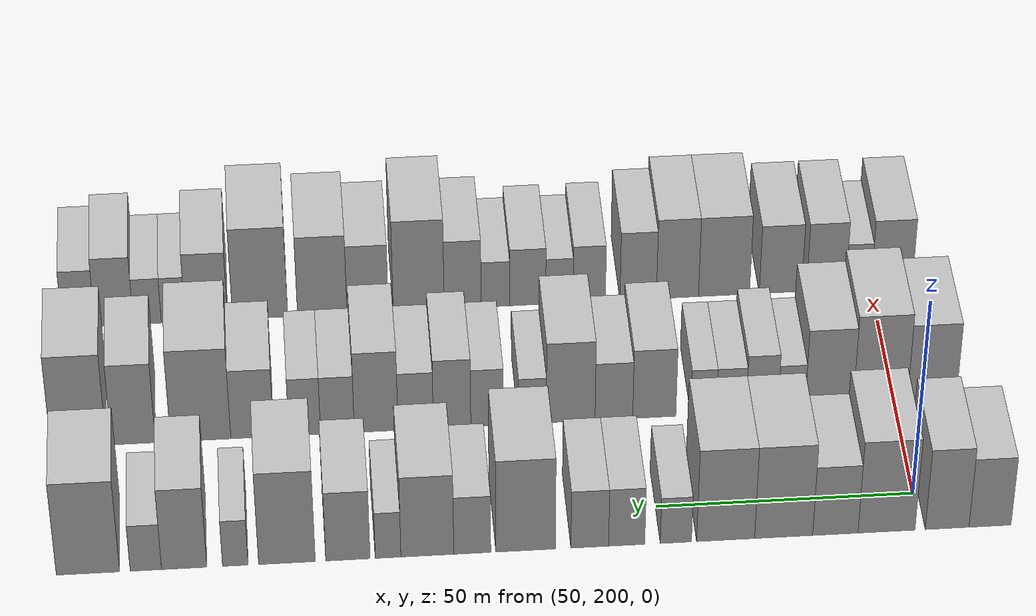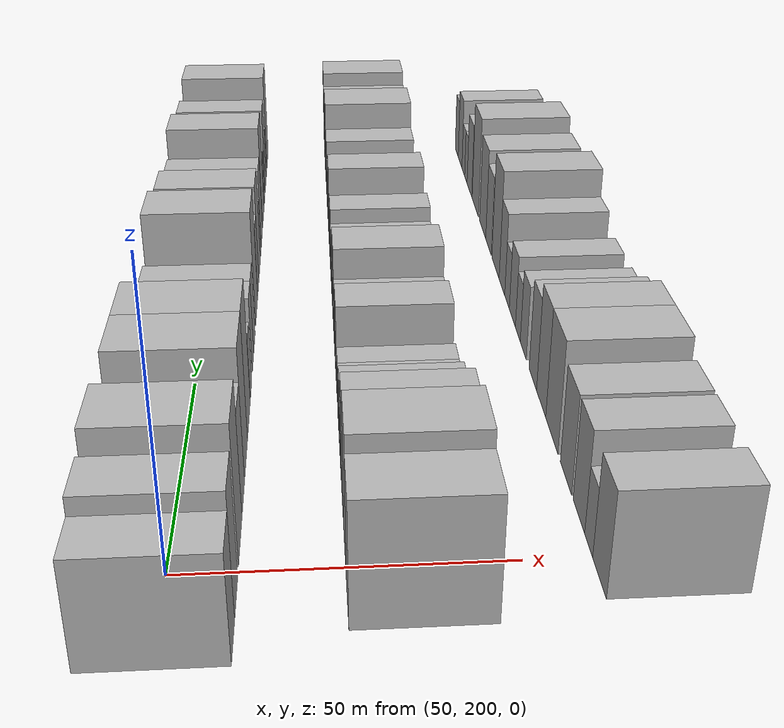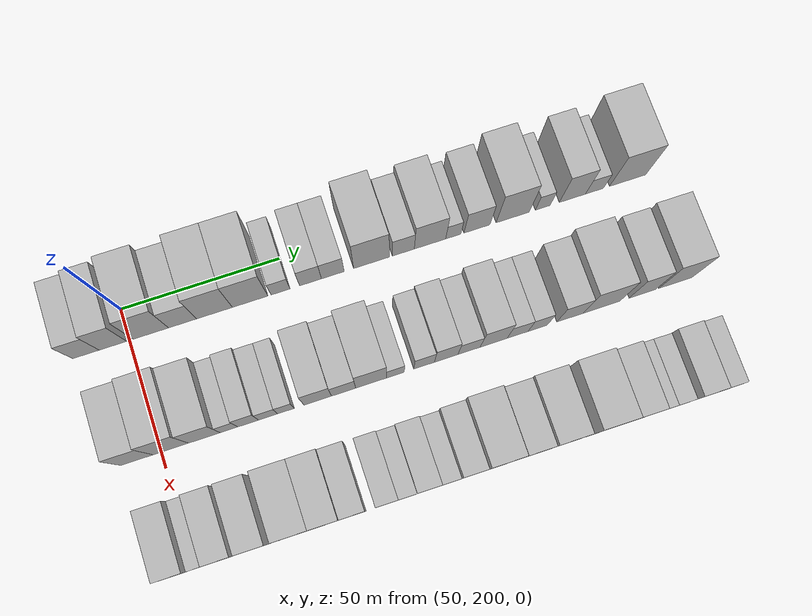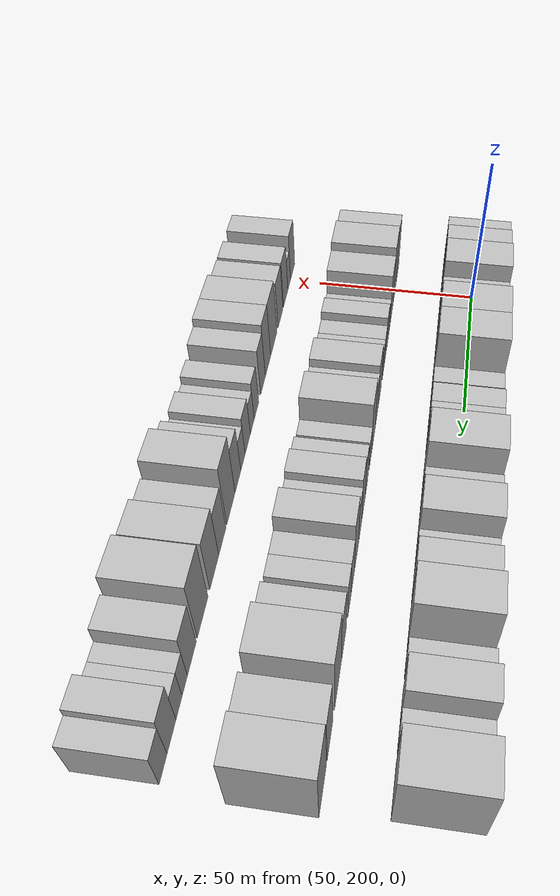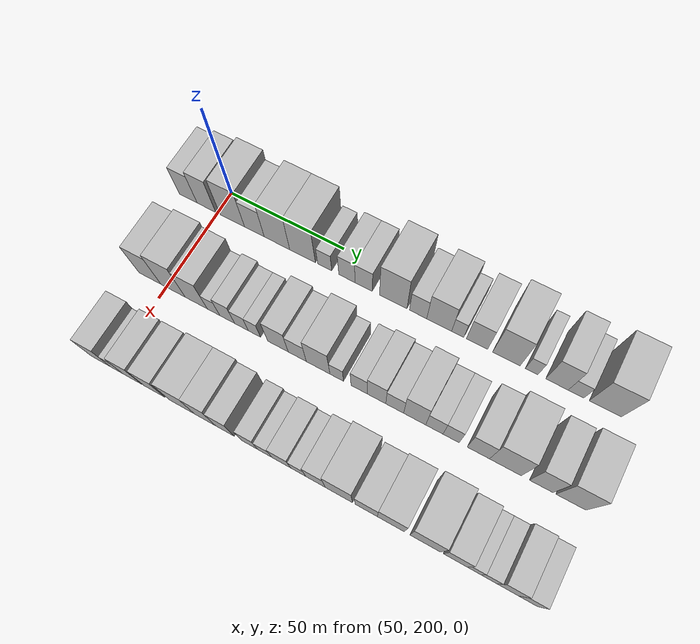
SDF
<sdf version="1.6">
 <world name="default">
  <model name="building_63">
   <static>1</static>
   <pose>50.0000 186.5423 0 0.000000 0.000000 0.000000</pose>
   <link name="link">
    <pose>0 0 9.00 0 0 0</pose>
    <collision name="collision"><geometry><box><size>20.0000 8.1435 18.0000</size></box></geometry></collision>
    <visual name="visual">
     <cast_shadows>0</cast_shadows>
     <geometry><box><size>20.0000 8.1435 18.0000</size></box></geometry>
     <material>
      <script>
       <uri>model://HANNAS_wall/materials/scripts</uri>
       <uri>model://HANNAS_wall/materials/textures</uri>
       <name>vrc/HANNAS_wall</name>
      </script>
     </material>
    </visual>
   </link>
  </model>
  <model name="building_64">
   <static>1</static>
   <pose>50.0000 194.8537 0 0.000000 0.000000 0.000000</pose>
   <link name="link">
    <pose>0 0 10.50 0 0 0</pose>
    <collision name="collision"><geometry><box><size>20.0000 8.4793 21.0000</size></box></geometry></collision>
    <visual name="visual">
     <cast_shadows>0</cast_shadows>
     <geometry><box><size>20.0000 8.4793 21.0000</size></box></geometry>
     <material>
      <script>
       <uri>model://HANNAS_wall/materials/scripts</uri>
       <uri>model://HANNAS_wall/materials/textures</uri>
       <name>vrc/HANNAS_wall</name>
      </script>
     </material>
    </visual>
   </link>
  </model>
  <model name="building_65">
   <static>1</static>
   <pose>50.0000 206.6092 0 0.000000 0.000000 0.000000</pose>
   <link name="link">
    <pose>0 0 12.00 0 0 0</pose>
    <collision name="collision"><geometry><box><size>20.0000 11.0317 24.0000</size></box></geometry></collision>
    <visual name="visual">
     <cast_shadows>0</cast_shadows>
     <geometry><box><size>20.0000 11.0317 24.0000</size></box></geometry>
     <material>
      <script>
       <uri>model://HANNAS_wall/materials/scripts</uri>
       <uri>model://HANNAS_wall/materials/textures</uri>
       <name>vrc/HANNAS_wall</name>
      </script>
     </material>
    </visual>
   </link>
  </model>
  <model name="building_66">
   <static>1</static>
   <pose>50.0000 216.4985 0 0.000000 0.000000 0.000000</pose>
   <link name="link">
    <pose>0 0 9.00 0 0 0</pose>
    <collision name="collision"><geometry><box><size>20.0000 8.7469 18.0000</size></box></geometry></collision>
    <visual name="visual">
     <cast_shadows>0</cast_shadows>
     <geometry><box><size>20.0000 8.7469 18.0000</size></box></geometry>
     <material>
      <script>
       <uri>model://HANNAS_wall/materials/scripts</uri>
       <uri>model://HANNAS_wall/materials/textures</uri>
       <name>vrc/HANNAS_wall</name>
      </script>
     </material>
    </visual>
   </link>
  </model>
  <model name="building_67">
   <static>1</static>
   <pose>50.0000 226.4782 0 0.000000 0.000000 0.000000</pose>
   <link name="link">
    <pose>0 0 12.00 0 0 0</pose>
    <collision name="collision"><geometry><box><size>20.0000 11.2125 24.0000</size></box></geometry></collision>
    <visual name="visual">
     <cast_shadows>0</cast_shadows>
     <geometry><box><size>20.0000 11.2125 24.0000</size></box></geometry>
     <material>
      <script>
       <uri>model://HANNAS_wall/materials/scripts</uri>
       <uri>model://HANNAS_wall/materials/textures</uri>
       <name>vrc/HANNAS_wall</name>
      </script>
     </material>
    </visual>
   </link>
  </model>
  <model name="building_68">
   <static>1</static>
   <pose>50.0000 237.6742 0 0.000000 0.000000 0.000000</pose>
   <link name="link">
    <pose>0 0 12.00 0 0 0</pose>
    <collision name="collision"><geometry><box><size>20.0000 11.1796 24.0000</size></box></geometry></collision>
    <visual name="visual">
     <cast_shadows>0</cast_shadows>
     <geometry><box><size>20.0000 11.1796 24.0000</size></box></geometry>
     <material>
      <script>
       <uri>model://HANNAS_wall/materials/scripts</uri>
       <uri>model://HANNAS_wall/materials/textures</uri>
       <name>vrc/HANNAS_wall</name>
      </script>
     </material>
    </visual>
   </link>
  </model>
  <model name="building_69">
   <static>1</static>
   <pose>50.0000 247.2629 0 0.000000 0.000000 0.000000</pose>
   <link name="link">
    <pose>0 0 6.00 0 0 0</pose>
    <collision name="collision"><geometry><box><size>20.0000 5.9978 12.0000</size></box></geometry></collision>
    <visual name="visual">
     <cast_shadows>0</cast_shadows>
     <geometry><box><size>20.0000 5.9978 12.0000</size></box></geometry>
     <material>
      <script>
       <uri>model://HANNAS_wall/materials/scripts</uri>
       <uri>model://HANNAS_wall/materials/textures</uri>
       <name>vrc/HANNAS_wall</name>
      </script>
     </material>
    </visual>
   </link>
  </model>
  <model name="building_70">
   <static>1</static>
   <pose>50.0000 256.7285 0 0.000000 0.000000 0.000000</pose>
   <link name="link">
    <pose>0 0 7.50 0 0 0</pose>
    <collision name="collision"><geometry><box><size>20.0000 6.9334 15.0000</size></box></geometry></collision>
    <visual name="visual">
     <cast_shadows>0</cast_shadows>
     <geometry><box><size>20.0000 6.9334 15.0000</size></box></geometry>
     <material>
      <script>
       <uri>model://HANNAS_wall/materials/scripts</uri>
       <uri>model://HANNAS_wall/materials/textures</uri>
       <name>vrc/HANNAS_wall</name>
      </script>
     </material>
    </visual>
   </link>
  </model>
  <model name="building_71">
   <static>1</static>
   <pose>50.0000 263.8117 0 0.000000 0.000000 0.000000</pose>
   <link name="link">
    <pose>0 0 7.50 0 0 0</pose>
    <collision name="collision"><geometry><box><size>20.0000 7.2331 15.0000</size></box></geometry></collision>
    <visual name="visual">
     <cast_shadows>0</cast_shadows>
     <geometry><box><size>20.0000 7.2331 15.0000</size></box></geometry>
     <material>
      <script>
       <uri>model://HANNAS_wall/materials/scripts</uri>
       <uri>model://HANNAS_wall/materials/textures</uri>
       <name>vrc/HANNAS_wall</name>
      </script>
     </material>
    </visual>
   </link>
  </model>
  <model name="building_72">
   <static>1</static>
   <pose>50.0000 276.1215 0 0.000000 0.000000 0.000000</pose>
   <link name="link">
    <pose>0 0 12.00 0 0 0</pose>
    <collision name="collision"><geometry><box><size>20.0000 11.3864 24.0000</size></box></geometry></collision>
    <visual name="visual">
     <cast_shadows>0</cast_shadows>
     <geometry><box><size>20.0000 11.3864 24.0000</size></box></geometry>
     <material>
      <script>
       <uri>model://HANNAS_wall/materials/scripts</uri>
       <uri>model://HANNAS_wall/materials/textures</uri>
       <name>vrc/HANNAS_wall</name>
      </script>
     </material>
    </visual>
   </link>
  </model>
  <model name="building_73">
   <static>1</static>
   <pose>50.0000 286.3479 0 0.000000 0.000000 0.000000</pose>
   <link name="link">
    <pose>0 0 7.50 0 0 0</pose>
    <collision name="collision"><geometry><box><size>20.0000 7.0665 15.0000</size></box></geometry></collision>
    <visual name="visual">
     <cast_shadows>0</cast_shadows>
     <geometry><box><size>20.0000 7.0665 15.0000</size></box></geometry>
     <material>
      <script>
       <uri>model://HANNAS_wall/materials/scripts</uri>
       <uri>model://HANNAS_wall/materials/textures</uri>
       <name>vrc/HANNAS_wall</name>
      </script>
     </material>
    </visual>
   </link>
  </model>
  <model name="building_74">
   <static>1</static>
   <pose>50.0000 294.9351 0 0.000000 0.000000 0.000000</pose>
   <link name="link">
    <pose>0 0 10.50 0 0 0</pose>
    <collision name="collision"><geometry><box><size>20.0000 10.1079 21.0000</size></box></geometry></collision>
    <visual name="visual">
     <cast_shadows>0</cast_shadows>
     <geometry><box><size>20.0000 10.1079 21.0000</size></box></geometry>
     <material>
      <script>
       <uri>model://HANNAS_wall/materials/scripts</uri>
       <uri>model://HANNAS_wall/materials/textures</uri>
       <name>vrc/HANNAS_wall</name>
      </script>
     </material>
    </visual>
   </link>
  </model>
  <model name="building_75">
   <static>1</static>
   <pose>50.0000 302.4384 0 0.000000 0.000000 0.000000</pose>
   <link name="link">
    <pose>0 0 6.00 0 0 0</pose>
    <collision name="collision"><geometry><box><size>20.0000 4.8986 12.0000</size></box></geometry></collision>
    <visual name="visual">
     <cast_shadows>0</cast_shadows>
     <geometry><box><size>20.0000 4.8986 12.0000</size></box></geometry>
     <material>
      <script>
       <uri>model://HANNAS_wall/materials/scripts</uri>
       <uri>model://HANNAS_wall/materials/textures</uri>
       <name>vrc/HANNAS_wall</name>
      </script>
     </material>
    </visual>
   </link>
  </model>
  <model name="building_76">
   <static>1</static>
   <pose>50.0000 310.1106 0 0.000000 0.000000 0.000000</pose>
   <link name="link">
    <pose>0 0 9.00 0 0 0</pose>
    <collision name="collision"><geometry><box><size>20.0000 8.4459 18.0000</size></box></geometry></collision>
    <visual name="visual">
     <cast_shadows>0</cast_shadows>
     <geometry><box><size>20.0000 8.4459 18.0000</size></box></geometry>
     <material>
      <script>
       <uri>model://HANNAS_wall/materials/scripts</uri>
       <uri>model://HANNAS_wall/materials/textures</uri>
       <name>vrc/HANNAS_wall</name>
      </script>
     </material>
    </visual>
   </link>
  </model>
  <model name="building_77">
   <static>1</static>
   <pose>50.0000 321.7299 0 0.000000 0.000000 0.000000</pose>
   <link name="link">
    <pose>0 0 12.00 0 0 0</pose>
    <collision name="collision"><geometry><box><size>20.0000 10.7926 24.0000</size></box></geometry></collision>
    <visual name="visual">
     <cast_shadows>0</cast_shadows>
     <geometry><box><size>20.0000 10.7926 24.0000</size></box></geometry>
     <material>
      <script>
       <uri>model://HANNAS_wall/materials/scripts</uri>
       <uri>model://HANNAS_wall/materials/textures</uri>
       <name>vrc/HANNAS_wall</name>
      </script>
     </material>
    </visual>
   </link>
  </model>
  <model name="building_78">
   <static>1</static>
   <pose>50.0000 331.5597 0 0.000000 0.000000 0.000000</pose>
   <link name="link">
    <pose>0 0 6.00 0 0 0</pose>
    <collision name="collision"><geometry><box><size>20.0000 4.8669 12.0000</size></box></geometry></collision>
    <visual name="visual">
     <cast_shadows>0</cast_shadows>
     <geometry><box><size>20.0000 4.8669 12.0000</size></box></geometry>
     <material>
      <script>
       <uri>model://HANNAS_wall/materials/scripts</uri>
       <uri>model://HANNAS_wall/materials/textures</uri>
       <name>vrc/HANNAS_wall</name>
      </script>
     </material>
    </visual>
   </link>
  </model>
  <model name="building_79">
   <static>1</static>
   <pose>50.0000 341.2933 0 0.000000 0.000000 0.000000</pose>
   <link name="link">
    <pose>0 0 10.50 0 0 0</pose>
    <collision name="collision"><geometry><box><size>20.0000 8.6002 21.0000</size></box></geometry></collision>
    <visual name="visual">
     <cast_shadows>0</cast_shadows>
     <geometry><box><size>20.0000 8.6002 21.0000</size></box></geometry>
     <material>
      <script>
       <uri>model://HANNAS_wall/materials/scripts</uri>
       <uri>model://HANNAS_wall/materials/textures</uri>
       <name>vrc/HANNAS_wall</name>
      </script>
     </material>
    </visual>
   </link>
  </model>
  <model name="building_80">
   <static>1</static>
   <pose>50.0000 348.5678 0 0.000000 0.000000 0.000000</pose>
   <link name="link">
    <pose>0 0 6.00 0 0 0</pose>
    <collision name="collision"><geometry><box><size>20.0000 5.9487 12.0000</size></box></geometry></collision>
    <visual name="visual">
     <cast_shadows>0</cast_shadows>
     <geometry><box><size>20.0000 5.9487 12.0000</size></box></geometry>
     <material>
      <script>
       <uri>model://HANNAS_wall/materials/scripts</uri>
       <uri>model://HANNAS_wall/materials/textures</uri>
       <name>vrc/HANNAS_wall</name>
      </script>
     </material>
    </visual>
   </link>
  </model>
  <model name="building_81">
   <static>1</static>
   <pose>50.0000 359.5371 0 0.000000 0.000000 0.000000</pose>
   <link name="link">
    <pose>0 0 12.00 0 0 0</pose>
    <collision name="collision"><geometry><box><size>20.0000 11.9899 24.0000</size></box></geometry></collision>
    <visual name="visual">
     <cast_shadows>0</cast_shadows>
     <geometry><box><size>20.0000 11.9899 24.0000</size></box></geometry>
     <material>
      <script>
       <uri>model://HANNAS_wall/materials/scripts</uri>
       <uri>model://HANNAS_wall/materials/textures</uri>
       <name>vrc/HANNAS_wall</name>
      </script>
     </material>
    </visual>
   </link>
  </model>
  <model name="building_142">
   <static>1</static>
   <pose>85.0000 192.6800 0 0.000000 0.000000 0.000000</pose>
   <link name="link">
    <pose>0 0 10.50 0 0 0</pose>
    <collision name="collision"><geometry><box><size>20.0000 9.7789 21.0000</size></box></geometry></collision>
    <visual name="visual">
     <cast_shadows>0</cast_shadows>
     <geometry><box><size>20.0000 9.7789 21.0000</size></box></geometry>
     <material>
      <script>
       <uri>model://HANNAS_wall/materials/scripts</uri>
       <uri>model://HANNAS_wall/materials/textures</uri>
       <name>vrc/HANNAS_wall</name>
      </script>
     </material>
    </visual>
   </link>
  </model>
  <model name="building_143">
   <static>1</static>
   <pose>85.0000 202.9672 0 0.000000 0.000000 0.000000</pose>
   <link name="link">
    <pose>0 0 12.00 0 0 0</pose>
    <collision name="collision"><geometry><box><size>20.0000 10.7956 24.0000</size></box></geometry></collision>
    <visual name="visual">
     <cast_shadows>0</cast_shadows>
     <geometry><box><size>20.0000 10.7956 24.0000</size></box></geometry>
     <material>
      <script>
       <uri>model://HANNAS_wall/materials/scripts</uri>
       <uri>model://HANNAS_wall/materials/textures</uri>
       <name>vrc/HANNAS_wall</name>
      </script>
     </material>
    </visual>
   </link>
  </model>
  <model name="building_144">
   <static>1</static>
   <pose>85.0000 213.1753 0 0.000000 0.000000 0.000000</pose>
   <link name="link">
    <pose>0 0 10.50 0 0 0</pose>
    <collision name="collision"><geometry><box><size>20.0000 9.6208 21.0000</size></box></geometry></collision>
    <visual name="visual">
     <cast_shadows>0</cast_shadows>
     <geometry><box><size>20.0000 9.6208 21.0000</size></box></geometry>
     <material>
      <script>
       <uri>model://HANNAS_wall/materials/scripts</uri>
       <uri>model://HANNAS_wall/materials/textures</uri>
       <name>vrc/HANNAS_wall</name>
      </script>
     </material>
    </visual>
   </link>
  </model>
  <model name="building_145">
   <static>1</static>
   <pose>85.0000 220.6734 0 0.000000 0.000000 0.000000</pose>
   <link name="link">
    <pose>0 0 6.00 0 0 0</pose>
    <collision name="collision"><geometry><box><size>20.0000 5.3754 12.0000</size></box></geometry></collision>
    <visual name="visual">
     <cast_shadows>0</cast_shadows>
     <geometry><box><size>20.0000 5.3754 12.0000</size></box></geometry>
     <material>
      <script>
       <uri>model://HANNAS_wall/materials/scripts</uri>
       <uri>model://HANNAS_wall/materials/textures</uri>
       <name>vrc/HANNAS_wall</name>
      </script>
     </material>
    </visual>
   </link>
  </model>
  <model name="building_146">
   <static>1</static>
   <pose>85.0000 226.5464 0 0.000000 0.000000 0.000000</pose>
   <link name="link">
    <pose>0 0 7.50 0 0 0</pose>
    <collision name="collision"><geometry><box><size>20.0000 6.3705 15.0000</size></box></geometry></collision>
    <visual name="visual">
     <cast_shadows>0</cast_shadows>
     <geometry><box><size>20.0000 6.3705 15.0000</size></box></geometry>
     <material>
      <script>
       <uri>model://HANNAS_wall/materials/scripts</uri>
       <uri>model://HANNAS_wall/materials/textures</uri>
       <name>vrc/HANNAS_wall</name>
      </script>
     </material>
    </visual>
   </link>
  </model>
  <model name="building_147">
   <static>1</static>
   <pose>85.0000 232.6747 0 0.000000 0.000000 0.000000</pose>
   <link name="link">
    <pose>0 0 6.00 0 0 0</pose>
    <collision name="collision"><geometry><box><size>20.0000 5.8861 12.0000</size></box></geometry></collision>
    <visual name="visual">
     <cast_shadows>0</cast_shadows>
     <geometry><box><size>20.0000 5.8861 12.0000</size></box></geometry>
     <material>
      <script>
       <uri>model://HANNAS_wall/materials/scripts</uri>
       <uri>model://HANNAS_wall/materials/textures</uri>
       <name>vrc/HANNAS_wall</name>
      </script>
     </material>
    </visual>
   </link>
  </model>
  <model name="building_148">
   <static>1</static>
   <pose>85.0000 238.1718 0 0.000000 0.000000 0.000000</pose>
   <link name="link">
    <pose>0 0 6.00 0 0 0</pose>
    <collision name="collision"><geometry><box><size>20.0000 5.1081 12.0000</size></box></geometry></collision>
    <visual name="visual">
     <cast_shadows>0</cast_shadows>
     <geometry><box><size>20.0000 5.1081 12.0000</size></box></geometry>
     <material>
      <script>
       <uri>model://HANNAS_wall/materials/scripts</uri>
       <uri>model://HANNAS_wall/materials/textures</uri>
       <name>vrc/HANNAS_wall</name>
      </script>
     </material>
    </visual>
   </link>
  </model>
  <model name="building_149">
   <static>1</static>
   <pose>85.0000 248.0035 0 0.000000 0.000000 0.000000</pose>
   <link name="link">
    <pose>0 0 9.00 0 0 0</pose>
    <collision name="collision"><geometry><box><size>20.0000 8.5552 18.0000</size></box></geometry></collision>
    <visual name="visual">
     <cast_shadows>0</cast_shadows>
     <geometry><box><size>20.0000 8.5552 18.0000</size></box></geometry>
     <material>
      <script>
       <uri>model://HANNAS_wall/materials/scripts</uri>
       <uri>model://HANNAS_wall/materials/textures</uri>
       <name>vrc/HANNAS_wall</name>
      </script>
     </material>
    </visual>
   </link>
  </model>
  <model name="building_150">
   <static>1</static>
   <pose>85.0000 256.0222 0 0.000000 0.000000 0.000000</pose>
   <link name="link">
    <pose>0 0 7.50 0 0 0</pose>
    <collision name="collision"><geometry><box><size>20.0000 7.4822 15.0000</size></box></geometry></collision>
    <visual name="visual">
     <cast_shadows>0</cast_shadows>
     <geometry><box><size>20.0000 7.4822 15.0000</size></box></geometry>
     <material>
      <script>
       <uri>model://HANNAS_wall/materials/scripts</uri>
       <uri>model://HANNAS_wall/materials/textures</uri>
       <name>vrc/HANNAS_wall</name>
      </script>
     </material>
    </visual>
   </link>
  </model>
  <model name="building_151">
   <static>1</static>
   <pose>85.0000 264.5931 0 0.000000 0.000000 0.000000</pose>
   <link name="link">
    <pose>0 0 10.50 0 0 0</pose>
    <collision name="collision"><geometry><box><size>20.0000 9.6594 21.0000</size></box></geometry></collision>
    <visual name="visual">
     <cast_shadows>0</cast_shadows>
     <geometry><box><size>20.0000 9.6594 21.0000</size></box></geometry>
     <material>
      <script>
       <uri>model://HANNAS_wall/materials/scripts</uri>
       <uri>model://HANNAS_wall/materials/textures</uri>
       <name>vrc/HANNAS_wall</name>
      </script>
     </material>
    </visual>
   </link>
  </model>
  <model name="building_152">
   <static>1</static>
   <pose>85.0000 272.1667 0 0.000000 0.000000 0.000000</pose>
   <link name="link">
    <pose>0 0 6.00 0 0 0</pose>
    <collision name="collision"><geometry><box><size>20.0000 5.4879 12.0000</size></box></geometry></collision>
    <visual name="visual">
     <cast_shadows>0</cast_shadows>
     <geometry><box><size>20.0000 5.4879 12.0000</size></box></geometry>
     <material>
      <script>
       <uri>model://HANNAS_wall/materials/scripts</uri>
       <uri>model://HANNAS_wall/materials/textures</uri>
       <name>vrc/HANNAS_wall</name>
      </script>
     </material>
    </visual>
   </link>
  </model>
  <model name="building_153">
   <static>1</static>
   <pose>85.0000 281.1376 0 0.000000 0.000000 0.000000</pose>
   <link name="link">
    <pose>0 0 7.50 0 0 0</pose>
    <collision name="collision"><geometry><box><size>20.0000 6.4538 15.0000</size></box></geometry></collision>
    <visual name="visual">
     <cast_shadows>0</cast_shadows>
     <geometry><box><size>20.0000 6.4538 15.0000</size></box></geometry>
     <material>
      <script>
       <uri>model://HANNAS_wall/materials/scripts</uri>
       <uri>model://HANNAS_wall/materials/textures</uri>
       <name>vrc/HANNAS_wall</name>
      </script>
     </material>
    </visual>
   </link>
  </model>
  <model name="building_154">
   <static>1</static>
   <pose>85.0000 288.0637 0 0.000000 0.000000 0.000000</pose>
   <link name="link">
    <pose>0 0 9.00 0 0 0</pose>
    <collision name="collision"><geometry><box><size>20.0000 7.3985 18.0000</size></box></geometry></collision>
    <visual name="visual">
     <cast_shadows>0</cast_shadows>
     <geometry><box><size>20.0000 7.3985 18.0000</size></box></geometry>
     <material>
      <script>
       <uri>model://HANNAS_wall/materials/scripts</uri>
       <uri>model://HANNAS_wall/materials/textures</uri>
       <name>vrc/HANNAS_wall</name>
      </script>
     </material>
    </visual>
   </link>
  </model>
  <model name="building_155">
   <static>1</static>
   <pose>85.0000 295.2617 0 0.000000 0.000000 0.000000</pose>
   <link name="link">
    <pose>0 0 7.50 0 0 0</pose>
    <collision name="collision"><geometry><box><size>20.0000 6.9974 15.0000</size></box></geometry></collision>
    <visual name="visual">
     <cast_shadows>0</cast_shadows>
     <geometry><box><size>20.0000 6.9974 15.0000</size></box></geometry>
     <material>
      <script>
       <uri>model://HANNAS_wall/materials/scripts</uri>
       <uri>model://HANNAS_wall/materials/textures</uri>
       <name>vrc/HANNAS_wall</name>
      </script>
     </material>
    </visual>
   </link>
  </model>
  <model name="building_156">
   <static>1</static>
   <pose>85.0000 303.0654 0 0.000000 0.000000 0.000000</pose>
   <link name="link">
    <pose>0 0 10.50 0 0 0</pose>
    <collision name="collision"><geometry><box><size>20.0000 8.6100 21.0000</size></box></geometry></collision>
    <visual name="visual">
     <cast_shadows>0</cast_shadows>
     <geometry><box><size>20.0000 8.6100 21.0000</size></box></geometry>
     <material>
      <script>
       <uri>model://HANNAS_wall/materials/scripts</uri>
       <uri>model://HANNAS_wall/materials/textures</uri>
       <name>vrc/HANNAS_wall</name>
      </script>
     </material>
    </visual>
   </link>
  </model>
  <model name="building_157">
   <static>1</static>
   <pose>85.0000 310.6973 0 0.000000 0.000000 0.000000</pose>
   <link name="link">
    <pose>0 0 7.50 0 0 0</pose>
    <collision name="collision"><geometry><box><size>20.0000 6.6539 15.0000</size></box></geometry></collision>
    <visual name="visual">
     <cast_shadows>0</cast_shadows>
     <geometry><box><size>20.0000 6.6539 15.0000</size></box></geometry>
     <material>
      <script>
       <uri>model://HANNAS_wall/materials/scripts</uri>
       <uri>model://HANNAS_wall/materials/textures</uri>
       <name>vrc/HANNAS_wall</name>
      </script>
     </material>
    </visual>
   </link>
  </model>
  <model name="building_158">
   <static>1</static>
   <pose>85.0000 317.1306 0 0.000000 0.000000 0.000000</pose>
   <link name="link">
    <pose>0 0 7.50 0 0 0</pose>
    <collision name="collision"><geometry><box><size>20.0000 6.2127 15.0000</size></box></geometry></collision>
    <visual name="visual">
     <cast_shadows>0</cast_shadows>
     <geometry><box><size>20.0000 6.2127 15.0000</size></box></geometry>
     <material>
      <script>
       <uri>model://HANNAS_wall/materials/scripts</uri>
       <uri>model://HANNAS_wall/materials/textures</uri>
       <name>vrc/HANNAS_wall</name>
      </script>
     </material>
    </visual>
   </link>
  </model>
  <model name="building_159">
   <static>1</static>
   <pose>85.0000 327.4584 0 0.000000 0.000000 0.000000</pose>
   <link name="link">
    <pose>0 0 9.00 0 0 0</pose>
    <collision name="collision"><geometry><box><size>20.0000 8.4429 18.0000</size></box></geometry></collision>
    <visual name="visual">
     <cast_shadows>0</cast_shadows>
     <geometry><box><size>20.0000 8.4429 18.0000</size></box></geometry>
     <material>
      <script>
       <uri>model://HANNAS_wall/materials/scripts</uri>
       <uri>model://HANNAS_wall/materials/textures</uri>
       <name>vrc/HANNAS_wall</name>
      </script>
     </material>
    </visual>
   </link>
  </model>
  <model name="building_160">
   <static>1</static>
   <pose>85.0000 337.5930 0 0.000000 0.000000 0.000000</pose>
   <link name="link">
    <pose>0 0 12.00 0 0 0</pose>
    <collision name="collision"><geometry><box><size>20.0000 11.8263 24.0000</size></box></geometry></collision>
    <visual name="visual">
     <cast_shadows>0</cast_shadows>
     <geometry><box><size>20.0000 11.8263 24.0000</size></box></geometry>
     <material>
      <script>
       <uri>model://HANNAS_wall/materials/scripts</uri>
       <uri>model://HANNAS_wall/materials/textures</uri>
       <name>vrc/HANNAS_wall</name>
      </script>
     </material>
    </visual>
   </link>
  </model>
  <model name="building_161">
   <static>1</static>
   <pose>85.0000 350.8163 0 0.000000 0.000000 0.000000</pose>
   <link name="link">
    <pose>0 0 10.50 0 0 0</pose>
    <collision name="collision"><geometry><box><size>20.0000 8.6204 21.0000</size></box></geometry></collision>
    <visual name="visual">
     <cast_shadows>0</cast_shadows>
     <geometry><box><size>20.0000 8.6204 21.0000</size></box></geometry>
     <material>
      <script>
       <uri>model://HANNAS_wall/materials/scripts</uri>
       <uri>model://HANNAS_wall/materials/textures</uri>
       <name>vrc/HANNAS_wall</name>
      </script>
     </material>
    </visual>
   </link>
  </model>
  <model name="building_162">
   <static>1</static>
   <pose>85.0000 361.5485 0 0.000000 0.000000 0.000000</pose>
   <link name="link">
    <pose>0 0 12.00 0 0 0</pose>
    <collision name="collision"><geometry><box><size>20.0000 10.8439 24.0000</size></box></geometry></collision>
    <visual name="visual">
     <cast_shadows>0</cast_shadows>
     <geometry><box><size>20.0000 10.8439 24.0000</size></box></geometry>
     <material>
      <script>
       <uri>model://HANNAS_wall/materials/scripts</uri>
       <uri>model://HANNAS_wall/materials/textures</uri>
       <name>vrc/HANNAS_wall</name>
      </script>
     </material>
    </visual>
   </link>
  </model>
  <model name="building_225">
   <static>1</static>
   <pose>120.0000 195.7219 0 0.000000 0.000000 0.000000</pose>
   <link name="link">
    <pose>0 0 9.00 0 0 0</pose>
    <collision name="collision"><geometry><box><size>20.0000 8.4549 18.0000</size></box></geometry></collision>
    <visual name="visual">
     <cast_shadows>0</cast_shadows>
     <geometry><box><size>20.0000 8.4549 18.0000</size></box></geometry>
     <material>
      <script>
       <uri>model://HANNAS_wall/materials/scripts</uri>
       <uri>model://HANNAS_wall/materials/textures</uri>
       <name>vrc/HANNAS_wall</name>
      </script>
     </material>
    </visual>
   </link>
  </model>
  <model name="building_226">
   <static>1</static>
   <pose>120.0000 202.5604 0 0.000000 0.000000 0.000000</pose>
   <link name="link">
    <pose>0 0 6.00 0 0 0</pose>
    <collision name="collision"><geometry><box><size>20.0000 5.2222 12.0000</size></box></geometry></collision>
    <visual name="visual">
     <cast_shadows>0</cast_shadows>
     <geometry><box><size>20.0000 5.2222 12.0000</size></box></geometry>
     <material>
      <script>
       <uri>model://HANNAS_wall/materials/scripts</uri>
       <uri>model://HANNAS_wall/materials/textures</uri>
       <name>vrc/HANNAS_wall</name>
      </script>
     </material>
    </visual>
   </link>
  </model>
  <model name="building_227">
   <static>1</static>
   <pose>120.0000 209.2227 0 0.000000 0.000000 0.000000</pose>
   <link name="link">
    <pose>0 0 9.00 0 0 0</pose>
    <collision name="collision"><geometry><box><size>20.0000 8.1025 18.0000</size></box></geometry></collision>
    <visual name="visual">
     <cast_shadows>0</cast_shadows>
     <geometry><box><size>20.0000 8.1025 18.0000</size></box></geometry>
     <material>
      <script>
       <uri>model://HANNAS_wall/materials/scripts</uri>
       <uri>model://HANNAS_wall/materials/textures</uri>
       <name>vrc/HANNAS_wall</name>
      </script>
     </material>
    </visual>
   </link>
  </model>
  <model name="building_228">
   <static>1</static>
   <pose>120.0000 218.6351 0 0.000000 0.000000 0.000000</pose>
   <link name="link">
    <pose>0 0 9.00 0 0 0</pose>
    <collision name="collision"><geometry><box><size>20.0000 8.7223 18.0000</size></box></geometry></collision>
    <visual name="visual">
     <cast_shadows>0</cast_shadows>
     <geometry><box><size>20.0000 8.7223 18.0000</size></box></geometry>
     <material>
      <script>
       <uri>model://HANNAS_wall/materials/scripts</uri>
       <uri>model://HANNAS_wall/materials/textures</uri>
       <name>vrc/HANNAS_wall</name>
      </script>
     </material>
    </visual>
   </link>
  </model>
  <model name="building_229">
   <static>1</static>
   <pose>120.0000 230.2403 0 0.000000 0.000000 0.000000</pose>
   <link name="link">
    <pose>0 0 10.50 0 0 0</pose>
    <collision name="collision"><geometry><box><size>20.0000 10.4882 21.0000</size></box></geometry></collision>
    <visual name="visual">
     <cast_shadows>0</cast_shadows>
     <geometry><box><size>20.0000 10.4882 21.0000</size></box></geometry>
     <material>
      <script>
       <uri>model://HANNAS_wall/materials/scripts</uri>
       <uri>model://HANNAS_wall/materials/textures</uri>
       <name>vrc/HANNAS_wall</name>
      </script>
     </material>
    </visual>
   </link>
  </model>
  <model name="building_230">
   <static>1</static>
   <pose>120.0000 239.8081 0 0.000000 0.000000 0.000000</pose>
   <link name="link">
    <pose>0 0 10.50 0 0 0</pose>
    <collision name="collision"><geometry><box><size>20.0000 8.6474 21.0000</size></box></geometry></collision>
    <visual name="visual">
     <cast_shadows>0</cast_shadows>
     <geometry><box><size>20.0000 8.6474 21.0000</size></box></geometry>
     <material>
      <script>
       <uri>model://HANNAS_wall/materials/scripts</uri>
       <uri>model://HANNAS_wall/materials/textures</uri>
       <name>vrc/HANNAS_wall</name>
      </script>
     </material>
    </visual>
   </link>
  </model>
  <model name="building_231">
   <static>1</static>
   <pose>120.0000 247.8656 0 0.000000 0.000000 0.000000</pose>
   <link name="link">
    <pose>0 0 9.00 0 0 0</pose>
    <collision name="collision"><geometry><box><size>20.0000 7.4675 18.0000</size></box></geometry></collision>
    <visual name="visual">
     <cast_shadows>0</cast_shadows>
     <geometry><box><size>20.0000 7.4675 18.0000</size></box></geometry>
     <material>
      <script>
       <uri>model://HANNAS_wall/materials/scripts</uri>
       <uri>model://HANNAS_wall/materials/textures</uri>
       <name>vrc/HANNAS_wall</name>
      </script>
     </material>
    </visual>
   </link>
  </model>
  <model name="building_232">
   <static>1</static>
   <pose>120.0000 257.9187 0 0.000000 0.000000 0.000000</pose>
   <link name="link">
    <pose>0 0 7.50 0 0 0</pose>
    <collision name="collision"><geometry><box><size>20.0000 6.6387 15.0000</size></box></geometry></collision>
    <visual name="visual">
     <cast_shadows>0</cast_shadows>
     <geometry><box><size>20.0000 6.6387 15.0000</size></box></geometry>
     <material>
      <script>
       <uri>model://HANNAS_wall/materials/scripts</uri>
       <uri>model://HANNAS_wall/materials/textures</uri>
       <name>vrc/HANNAS_wall</name>
      </script>
     </material>
    </visual>
   </link>
  </model>
  <model name="building_233">
   <static>1</static>
   <pose>120.0000 264.0195 0 0.000000 0.000000 0.000000</pose>
   <link name="link">
    <pose>0 0 6.00 0 0 0</pose>
    <collision name="collision"><geometry><box><size>20.0000 5.5629 12.0000</size></box></geometry></collision>
    <visual name="visual">
     <cast_shadows>0</cast_shadows>
     <geometry><box><size>20.0000 5.5629 12.0000</size></box></geometry>
     <material>
      <script>
       <uri>model://HANNAS_wall/materials/scripts</uri>
       <uri>model://HANNAS_wall/materials/textures</uri>
       <name>vrc/HANNAS_wall</name>
      </script>
     </material>
    </visual>
   </link>
  </model>
  <model name="building_234">
   <static>1</static>
   <pose>120.0000 270.4777 0 0.000000 0.000000 0.000000</pose>
   <link name="link">
    <pose>0 0 7.50 0 0 0</pose>
    <collision name="collision"><geometry><box><size>20.0000 7.3536 15.0000</size></box></geometry></collision>
    <visual name="visual">
     <cast_shadows>0</cast_shadows>
     <geometry><box><size>20.0000 7.3536 15.0000</size></box></geometry>
     <material>
      <script>
       <uri>model://HANNAS_wall/materials/scripts</uri>
       <uri>model://HANNAS_wall/materials/textures</uri>
       <name>vrc/HANNAS_wall</name>
      </script>
     </material>
    </visual>
   </link>
  </model>
  <model name="building_235">
   <static>1</static>
   <pose>120.0000 277.0832 0 0.000000 0.000000 0.000000</pose>
   <link name="link">
    <pose>0 0 6.00 0 0 0</pose>
    <collision name="collision"><geometry><box><size>20.0000 5.8573 12.0000</size></box></geometry></collision>
    <visual name="visual">
     <cast_shadows>0</cast_shadows>
     <geometry><box><size>20.0000 5.8573 12.0000</size></box></geometry>
     <material>
      <script>
       <uri>model://HANNAS_wall/materials/scripts</uri>
       <uri>model://HANNAS_wall/materials/textures</uri>
       <name>vrc/HANNAS_wall</name>
      </script>
     </material>
    </visual>
   </link>
  </model>
  <model name="building_236">
   <static>1</static>
   <pose>120.0000 283.7793 0 0.000000 0.000000 0.000000</pose>
   <link name="link">
    <pose>0 0 9.00 0 0 0</pose>
    <collision name="collision"><geometry><box><size>20.0000 7.5347 18.0000</size></box></geometry></collision>
    <visual name="visual">
     <cast_shadows>0</cast_shadows>
     <geometry><box><size>20.0000 7.5347 18.0000</size></box></geometry>
     <material>
      <script>
       <uri>model://HANNAS_wall/materials/scripts</uri>
       <uri>model://HANNAS_wall/materials/textures</uri>
       <name>vrc/HANNAS_wall</name>
      </script>
     </material>
    </visual>
   </link>
  </model>
  <model name="building_237">
   <static>1</static>
   <pose>120.0000 292.7466 0 0.000000 0.000000 0.000000</pose>
   <link name="link">
    <pose>0 0 12.00 0 0 0</pose>
    <collision name="collision"><geometry><box><size>20.0000 10.4000 24.0000</size></box></geometry></collision>
    <visual name="visual">
     <cast_shadows>0</cast_shadows>
     <geometry><box><size>20.0000 10.4000 24.0000</size></box></geometry>
     <material>
      <script>
       <uri>model://HANNAS_wall/materials/scripts</uri>
       <uri>model://HANNAS_wall/materials/textures</uri>
       <name>vrc/HANNAS_wall</name>
      </script>
     </material>
    </visual>
   </link>
  </model>
  <model name="building_238">
   <static>1</static>
   <pose>120.0000 303.1462 0 0.000000 0.000000 0.000000</pose>
   <link name="link">
    <pose>0 0 9.00 0 0 0</pose>
    <collision name="collision"><geometry><box><size>20.0000 8.3992 18.0000</size></box></geometry></collision>
    <visual name="visual">
     <cast_shadows>0</cast_shadows>
     <geometry><box><size>20.0000 8.3992 18.0000</size></box></geometry>
     <material>
      <script>
       <uri>model://HANNAS_wall/materials/scripts</uri>
       <uri>model://HANNAS_wall/materials/textures</uri>
       <name>vrc/HANNAS_wall</name>
      </script>
     </material>
    </visual>
   </link>
  </model>
  <model name="building_239">
   <static>1</static>
   <pose>120.0000 312.3711 0 0.000000 0.000000 0.000000</pose>
   <link name="link">
    <pose>0 0 10.50 0 0 0</pose>
    <collision name="collision"><geometry><box><size>20.0000 10.0506 21.0000</size></box></geometry></collision>
    <visual name="visual">
     <cast_shadows>0</cast_shadows>
     <geometry><box><size>20.0000 10.0506 21.0000</size></box></geometry>
     <material>
      <script>
       <uri>model://HANNAS_wall/materials/scripts</uri>
       <uri>model://HANNAS_wall/materials/textures</uri>
       <name>vrc/HANNAS_wall</name>
      </script>
     </material>
    </visual>
   </link>
  </model>
  <model name="building_240">
   <static>1</static>
   <pose>120.0000 324.9925 0 0.000000 0.000000 0.000000</pose>
   <link name="link">
    <pose>0 0 12.00 0 0 0</pose>
    <collision name="collision"><geometry><box><size>20.0000 11.1922 24.0000</size></box></geometry></collision>
    <visual name="visual">
     <cast_shadows>0</cast_shadows>
     <geometry><box><size>20.0000 11.1922 24.0000</size></box></geometry>
     <material>
      <script>
       <uri>model://HANNAS_wall/materials/scripts</uri>
       <uri>model://HANNAS_wall/materials/textures</uri>
       <name>vrc/HANNAS_wall</name>
      </script>
     </material>
    </visual>
   </link>
  </model>
  <model name="building_241">
   <static>1</static>
   <pose>120.0000 335.8818 0 0.000000 0.000000 0.000000</pose>
   <link name="link">
    <pose>0 0 9.00 0 0 0</pose>
    <collision name="collision"><geometry><box><size>20.0000 8.5864 18.0000</size></box></geometry></collision>
    <visual name="visual">
     <cast_shadows>0</cast_shadows>
     <geometry><box><size>20.0000 8.5864 18.0000</size></box></geometry>
     <material>
      <script>
       <uri>model://HANNAS_wall/materials/scripts</uri>
       <uri>model://HANNAS_wall/materials/textures</uri>
       <name>vrc/HANNAS_wall</name>
      </script>
     </material>
    </visual>
   </link>
  </model>
  <model name="building_242">
   <static>1</static>
   <pose>120.0000 342.6062 0 0.000000 0.000000 0.000000</pose>
   <link name="link">
    <pose>0 0 6.00 0 0 0</pose>
    <collision name="collision"><geometry><box><size>20.0000 4.8623 12.0000</size></box></geometry></collision>
    <visual name="visual">
     <cast_shadows>0</cast_shadows>
     <geometry><box><size>20.0000 4.8623 12.0000</size></box></geometry>
     <material>
      <script>
       <uri>model://HANNAS_wall/materials/scripts</uri>
       <uri>model://HANNAS_wall/materials/textures</uri>
       <name>vrc/HANNAS_wall</name>
      </script>
     </material>
    </visual>
   </link>
  </model>
  <model name="building_243">
   <static>1</static>
   <pose>120.0000 347.8516 0 0.000000 0.000000 0.000000</pose>
   <link name="link">
    <pose>0 0 6.00 0 0 0</pose>
    <collision name="collision"><geometry><box><size>20.0000 5.6285 12.0000</size></box></geometry></collision>
    <visual name="visual">
     <cast_shadows>0</cast_shadows>
     <geometry><box><size>20.0000 5.6285 12.0000</size></box></geometry>
     <material>
      <script>
       <uri>model://HANNAS_wall/materials/scripts</uri>
       <uri>model://HANNAS_wall/materials/textures</uri>
       <name>vrc/HANNAS_wall</name>
      </script>
     </material>
    </visual>
   </link>
  </model>
  <model name="building_244">
   <static>1</static>
   <pose>120.0000 354.5582 0 0.000000 0.000000 0.000000</pose>
   <link name="link">
    <pose>0 0 9.00 0 0 0</pose>
    <collision name="collision"><geometry><box><size>20.0000 7.7846 18.0000</size></box></geometry></collision>
    <visual name="visual">
     <cast_shadows>0</cast_shadows>
     <geometry><box><size>20.0000 7.7846 18.0000</size></box></geometry>
     <material>
      <script>
       <uri>model://HANNAS_wall/materials/scripts</uri>
       <uri>model://HANNAS_wall/materials/textures</uri>
       <name>vrc/HANNAS_wall</name>
      </script>
     </material>
    </visual>
   </link>
  </model>
  <model name="building_245">
   <static>1</static>
   <pose>120.0000 361.7486 0 0.000000 0.000000 0.000000</pose>
   <link name="link">
    <pose>0 0 7.50 0 0 0</pose>
    <collision name="collision"><geometry><box><size>20.0000 6.5962 15.0000</size></box></geometry></collision>
    <visual name="visual">
     <cast_shadows>0</cast_shadows>
     <geometry><box><size>20.0000 6.5962 15.0000</size></box></geometry>
     <material>
      <script>
       <uri>model://HANNAS_wall/materials/scripts</uri>
       <uri>model://HANNAS_wall/materials/textures</uri>
       <name>vrc/HANNAS_wall</name>
      </script>
     </material>
    </visual>
   </link>
  </model>
 </world>
</sdf>
